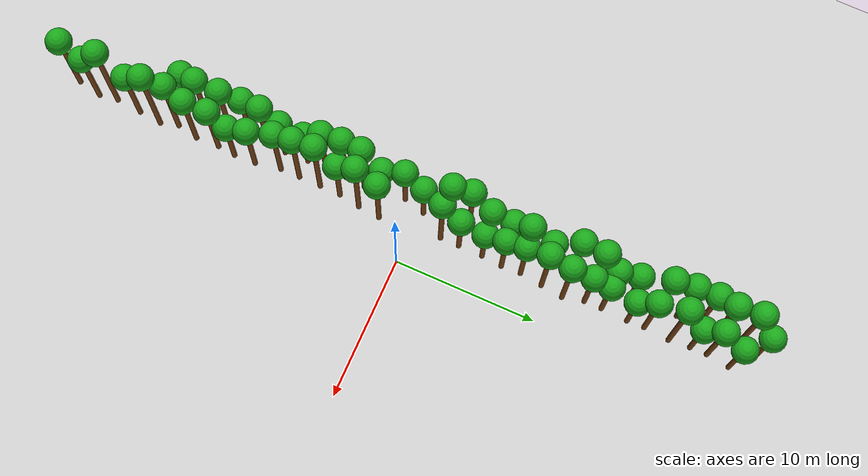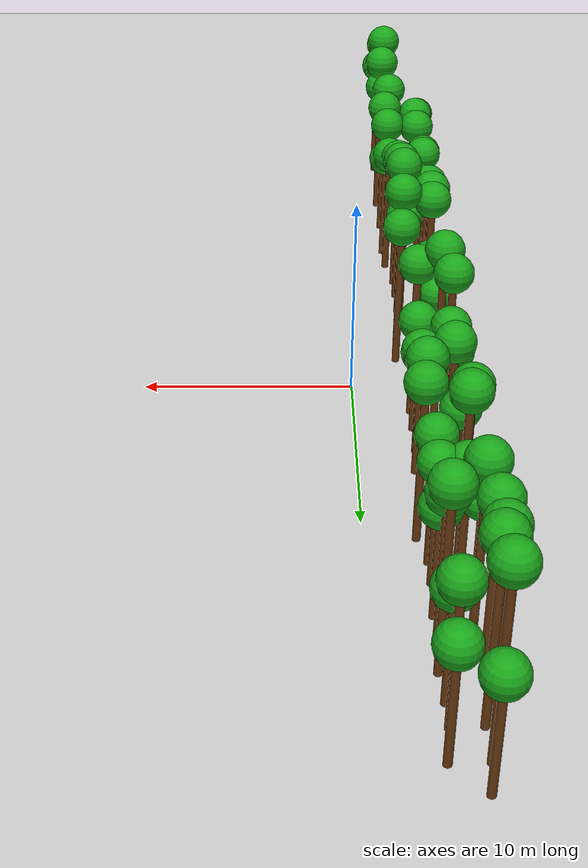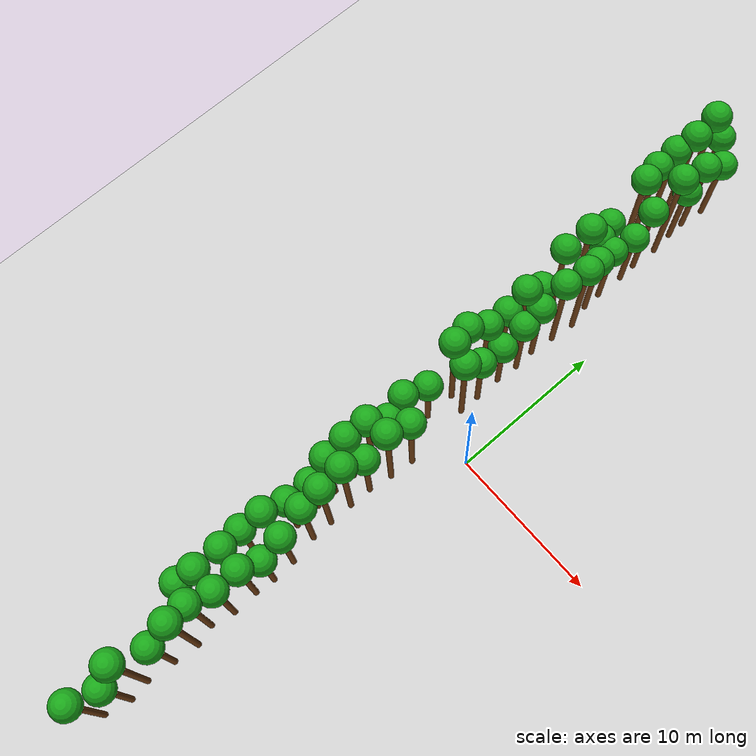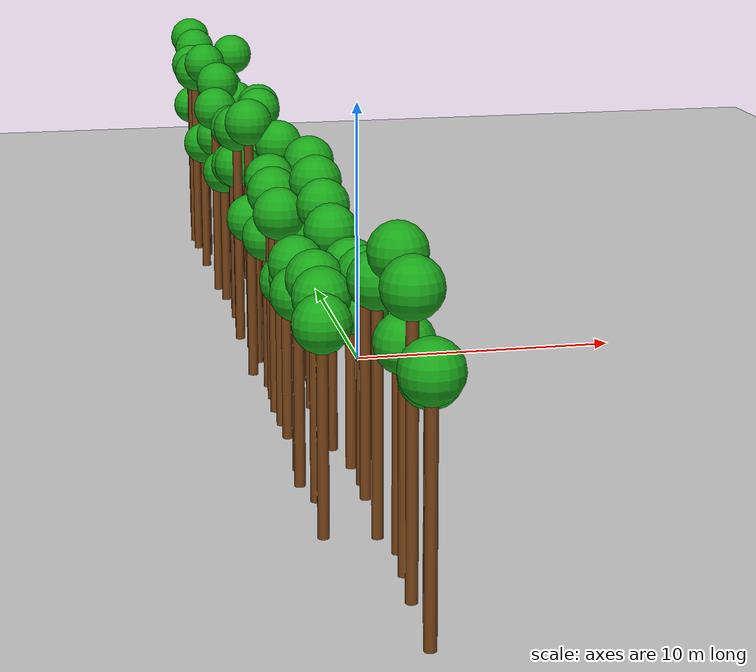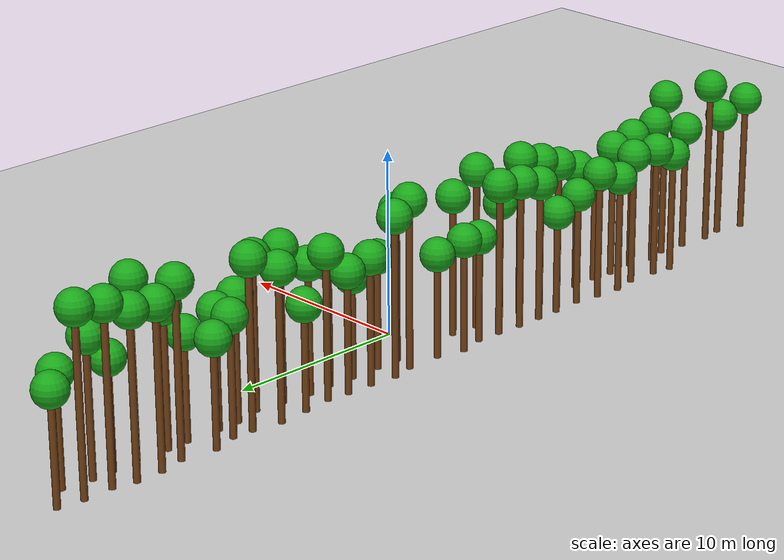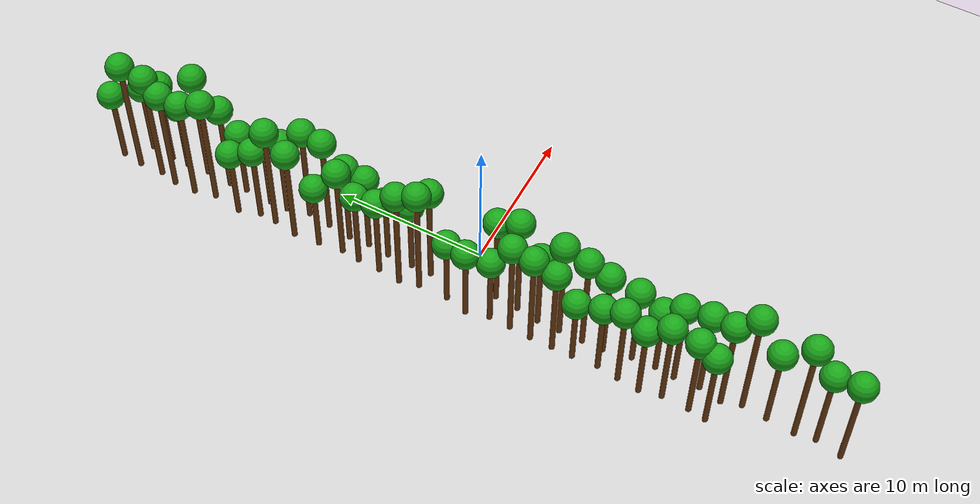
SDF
<sdf version="1.6">
 <world name="forest_world">
  <include><uri>model://sun</uri></include>
  <include><uri>model://ground_plane</uri></include>
  <model name="tree_481">
   <static>true</static>
   <link name="trunk">
    <collision name="collision">
     <pose>-4.20 -17.26 3.09 0 0 0</pose>
     <geometry><cylinder><radius>0.18</radius><length>6.18</length></cylinder></geometry>
    </collision>
    <visual name="trunk_visual">
     <pose>-4.20 -17.26 3.09 0 0 0</pose>
     <geometry><cylinder><radius>0.18</radius><length>6.18</length></cylinder></geometry>
     <material><ambient>0.35 0.20 0.05 1</ambient><diffuse>0.45 0.25 0.08 1</diffuse></material>
    </visual>
    <visual name="leaf_visual">
     <pose>-4.20 -17.26 6.63 0 0 0</pose>
     <geometry><sphere><radius>0.9</radius></sphere></geometry>
     <material><ambient>0.05 0.45 0.05 1</ambient><diffuse>0.10 0.65 0.10 1</diffuse></material>
    </visual>
   </link>
  </model>
  <model name="tree_482">
   <static>true</static>
   <link name="trunk">
    <collision name="collision">
     <pose>-4.02 -16.11 3.34 0 0 0</pose>
     <geometry><cylinder><radius>0.18</radius><length>6.68</length></cylinder></geometry>
    </collision>
    <visual name="trunk_visual">
     <pose>-4.02 -16.11 3.34 0 0 0</pose>
     <geometry><cylinder><radius>0.18</radius><length>6.68</length></cylinder></geometry>
     <material><ambient>0.35 0.20 0.05 1</ambient><diffuse>0.45 0.25 0.08 1</diffuse></material>
    </visual>
    <visual name="leaf_visual">
     <pose>-4.02 -16.11 7.13 0 0 0</pose>
     <geometry><sphere><radius>0.9</radius></sphere></geometry>
     <material><ambient>0.05 0.45 0.05 1</ambient><diffuse>0.10 0.65 0.10 1</diffuse></material>
    </visual>
   </link>
  </model>
  <model name="tree_483">
   <static>true</static>
   <link name="trunk">
    <collision name="collision">
     <pose>-3.95 -14.34 3.38 0 0 0</pose>
     <geometry><cylinder><radius>0.18</radius><length>6.75</length></cylinder></geometry>
    </collision>
    <visual name="trunk_visual">
     <pose>-3.95 -14.34 3.38 0 0 0</pose>
     <geometry><cylinder><radius>0.18</radius><length>6.75</length></cylinder></geometry>
     <material><ambient>0.35 0.20 0.05 1</ambient><diffuse>0.45 0.25 0.08 1</diffuse></material>
    </visual>
    <visual name="leaf_visual">
     <pose>-3.95 -14.34 7.20 0 0 0</pose>
     <geometry><sphere><radius>0.9</radius></sphere></geometry>
     <material><ambient>0.05 0.45 0.05 1</ambient><diffuse>0.10 0.65 0.10 1</diffuse></material>
    </visual>
   </link>
  </model>
  <model name="tree_484">
   <static>true</static>
   <link name="trunk">
    <collision name="collision">
     <pose>-4.24 -12.94 2.96 0 0 0</pose>
     <geometry><cylinder><radius>0.18</radius><length>5.91</length></cylinder></geometry>
    </collision>
    <visual name="trunk_visual">
     <pose>-4.24 -12.94 2.96 0 0 0</pose>
     <geometry><cylinder><radius>0.18</radius><length>5.91</length></cylinder></geometry>
     <material><ambient>0.35 0.20 0.05 1</ambient><diffuse>0.45 0.25 0.08 1</diffuse></material>
    </visual>
    <visual name="leaf_visual">
     <pose>-4.24 -12.94 6.36 0 0 0</pose>
     <geometry><sphere><radius>0.9</radius></sphere></geometry>
     <material><ambient>0.05 0.45 0.05 1</ambient><diffuse>0.10 0.65 0.10 1</diffuse></material>
    </visual>
   </link>
  </model>
  <model name="tree_485">
   <static>true</static>
   <link name="trunk">
    <collision name="collision">
     <pose>-4.08 -11.49 3.25 0 0 0</pose>
     <geometry><cylinder><radius>0.18</radius><length>6.50</length></cylinder></geometry>
    </collision>
    <visual name="trunk_visual">
     <pose>-4.08 -11.49 3.25 0 0 0</pose>
     <geometry><cylinder><radius>0.18</radius><length>6.50</length></cylinder></geometry>
     <material><ambient>0.35 0.20 0.05 1</ambient><diffuse>0.45 0.25 0.08 1</diffuse></material>
    </visual>
    <visual name="leaf_visual">
     <pose>-4.08 -11.49 6.95 0 0 0</pose>
     <geometry><sphere><radius>0.9</radius></sphere></geometry>
     <material><ambient>0.05 0.45 0.05 1</ambient><diffuse>0.10 0.65 0.10 1</diffuse></material>
    </visual>
   </link>
  </model>
  <model name="tree_486">
   <static>true</static>
   <link name="trunk">
    <collision name="collision">
     <pose>-3.87 -10.06 2.82 0 0 0</pose>
     <geometry><cylinder><radius>0.18</radius><length>5.63</length></cylinder></geometry>
    </collision>
    <visual name="trunk_visual">
     <pose>-3.87 -10.06 2.82 0 0 0</pose>
     <geometry><cylinder><radius>0.18</radius><length>5.63</length></cylinder></geometry>
     <material><ambient>0.35 0.20 0.05 1</ambient><diffuse>0.45 0.25 0.08 1</diffuse></material>
    </visual>
    <visual name="leaf_visual">
     <pose>-3.87 -10.06 6.08 0 0 0</pose>
     <geometry><sphere><radius>0.9</radius></sphere></geometry>
     <material><ambient>0.05 0.45 0.05 1</ambient><diffuse>0.10 0.65 0.10 1</diffuse></material>
    </visual>
   </link>
  </model>
  <model name="tree_487">
   <static>true</static>
   <link name="trunk">
    <collision name="collision">
     <pose>-3.96 -8.39 2.55 0 0 0</pose>
     <geometry><cylinder><radius>0.18</radius><length>5.10</length></cylinder></geometry>
    </collision>
    <visual name="trunk_visual">
     <pose>-3.96 -8.39 2.55 0 0 0</pose>
     <geometry><cylinder><radius>0.18</radius><length>5.10</length></cylinder></geometry>
     <material><ambient>0.35 0.20 0.05 1</ambient><diffuse>0.45 0.25 0.08 1</diffuse></material>
    </visual>
    <visual name="leaf_visual">
     <pose>-3.96 -8.39 5.55 0 0 0</pose>
     <geometry><sphere><radius>0.9</radius></sphere></geometry>
     <material><ambient>0.05 0.45 0.05 1</ambient><diffuse>0.10 0.65 0.10 1</diffuse></material>
    </visual>
   </link>
  </model>
  <model name="tree_488">
   <static>true</static>
   <link name="trunk">
    <collision name="collision">
     <pose>-3.97 -7.03 3.54 0 0 0</pose>
     <geometry><cylinder><radius>0.18</radius><length>7.08</length></cylinder></geometry>
    </collision>
    <visual name="trunk_visual">
     <pose>-3.97 -7.03 3.54 0 0 0</pose>
     <geometry><cylinder><radius>0.18</radius><length>7.08</length></cylinder></geometry>
     <material><ambient>0.35 0.20 0.05 1</ambient><diffuse>0.45 0.25 0.08 1</diffuse></material>
    </visual>
    <visual name="leaf_visual">
     <pose>-3.97 -7.03 7.53 0 0 0</pose>
     <geometry><sphere><radius>0.9</radius></sphere></geometry>
     <material><ambient>0.05 0.45 0.05 1</ambient><diffuse>0.10 0.65 0.10 1</diffuse></material>
    </visual>
   </link>
  </model>
  <model name="tree_489">
   <static>true</static>
   <link name="trunk">
    <collision name="collision">
     <pose>-3.98 -5.56 3.75 0 0 0</pose>
     <geometry><cylinder><radius>0.18</radius><length>7.50</length></cylinder></geometry>
    </collision>
    <visual name="trunk_visual">
     <pose>-3.98 -5.56 3.75 0 0 0</pose>
     <geometry><cylinder><radius>0.18</radius><length>7.50</length></cylinder></geometry>
     <material><ambient>0.35 0.20 0.05 1</ambient><diffuse>0.45 0.25 0.08 1</diffuse></material>
    </visual>
    <visual name="leaf_visual">
     <pose>-3.98 -5.56 7.95 0 0 0</pose>
     <geometry><sphere><radius>0.9</radius></sphere></geometry>
     <material><ambient>0.05 0.45 0.05 1</ambient><diffuse>0.10 0.65 0.10 1</diffuse></material>
    </visual>
   </link>
  </model>
  <model name="tree_490">
   <static>true</static>
   <link name="trunk">
    <collision name="collision">
     <pose>-3.88 -4.12 3.83 0 0 0</pose>
     <geometry><cylinder><radius>0.18</radius><length>7.66</length></cylinder></geometry>
    </collision>
    <visual name="trunk_visual">
     <pose>-3.88 -4.12 3.83 0 0 0</pose>
     <geometry><cylinder><radius>0.18</radius><length>7.66</length></cylinder></geometry>
     <material><ambient>0.35 0.20 0.05 1</ambient><diffuse>0.45 0.25 0.08 1</diffuse></material>
    </visual>
    <visual name="leaf_visual">
     <pose>-3.88 -4.12 8.11 0 0 0</pose>
     <geometry><sphere><radius>0.9</radius></sphere></geometry>
     <material><ambient>0.05 0.45 0.05 1</ambient><diffuse>0.10 0.65 0.10 1</diffuse></material>
    </visual>
   </link>
  </model>
  <model name="tree_491">
   <static>true</static>
   <link name="trunk">
    <collision name="collision">
     <pose>-3.83 -2.70 2.62 0 0 0</pose>
     <geometry><cylinder><radius>0.18</radius><length>5.24</length></cylinder></geometry>
    </collision>
    <visual name="trunk_visual">
     <pose>-3.83 -2.70 2.62 0 0 0</pose>
     <geometry><cylinder><radius>0.18</radius><length>5.24</length></cylinder></geometry>
     <material><ambient>0.35 0.20 0.05 1</ambient><diffuse>0.45 0.25 0.08 1</diffuse></material>
    </visual>
    <visual name="leaf_visual">
     <pose>-3.83 -2.70 5.69 0 0 0</pose>
     <geometry><sphere><radius>0.9</radius></sphere></geometry>
     <material><ambient>0.05 0.45 0.05 1</ambient><diffuse>0.10 0.65 0.10 1</diffuse></material>
    </visual>
   </link>
  </model>
  <model name="tree_492">
   <static>true</static>
   <link name="trunk">
    <collision name="collision">
     <pose>-4.21 -1.22 2.79 0 0 0</pose>
     <geometry><cylinder><radius>0.18</radius><length>5.57</length></cylinder></geometry>
    </collision>
    <visual name="trunk_visual">
     <pose>-4.21 -1.22 2.79 0 0 0</pose>
     <geometry><cylinder><radius>0.18</radius><length>5.57</length></cylinder></geometry>
     <material><ambient>0.35 0.20 0.05 1</ambient><diffuse>0.45 0.25 0.08 1</diffuse></material>
    </visual>
    <visual name="leaf_visual">
     <pose>-4.21 -1.22 6.02 0 0 0</pose>
     <geometry><sphere><radius>0.9</radius></sphere></geometry>
     <material><ambient>0.05 0.45 0.05 1</ambient><diffuse>0.10 0.65 0.10 1</diffuse></material>
    </visual>
   </link>
  </model>
  <model name="tree_493">
   <static>true</static>
   <link name="trunk">
    <collision name="collision">
     <pose>-3.82 0.29 2.56 0 0 0</pose>
     <geometry><cylinder><radius>0.18</radius><length>5.12</length></cylinder></geometry>
    </collision>
    <visual name="trunk_visual">
     <pose>-3.82 0.29 2.56 0 0 0</pose>
     <geometry><cylinder><radius>0.18</radius><length>5.12</length></cylinder></geometry>
     <material><ambient>0.35 0.20 0.05 1</ambient><diffuse>0.45 0.25 0.08 1</diffuse></material>
    </visual>
    <visual name="leaf_visual">
     <pose>-3.82 0.29 5.57 0 0 0</pose>
     <geometry><sphere><radius>0.9</radius></sphere></geometry>
     <material><ambient>0.05 0.45 0.05 1</ambient><diffuse>0.10 0.65 0.10 1</diffuse></material>
    </visual>
   </link>
  </model>
  <model name="tree_494">
   <static>true</static>
   <link name="trunk">
    <collision name="collision">
     <pose>-3.82 2.25 4.27 0 0 0</pose>
     <geometry><cylinder><radius>0.18</radius><length>8.53</length></cylinder></geometry>
    </collision>
    <visual name="trunk_visual">
     <pose>-3.82 2.25 4.27 0 0 0</pose>
     <geometry><cylinder><radius>0.18</radius><length>8.53</length></cylinder></geometry>
     <material><ambient>0.35 0.20 0.05 1</ambient><diffuse>0.45 0.25 0.08 1</diffuse></material>
    </visual>
    <visual name="leaf_visual">
     <pose>-3.82 2.25 8.98 0 0 0</pose>
     <geometry><sphere><radius>0.9</radius></sphere></geometry>
     <material><ambient>0.05 0.45 0.05 1</ambient><diffuse>0.10 0.65 0.10 1</diffuse></material>
    </visual>
   </link>
  </model>
  <model name="tree_495">
   <static>true</static>
   <link name="trunk">
    <collision name="collision">
     <pose>-4.11 3.52 4.04 0 0 0</pose>
     <geometry><cylinder><radius>0.18</radius><length>8.08</length></cylinder></geometry>
    </collision>
    <visual name="trunk_visual">
     <pose>-4.11 3.52 4.04 0 0 0</pose>
     <geometry><cylinder><radius>0.18</radius><length>8.08</length></cylinder></geometry>
     <material><ambient>0.35 0.20 0.05 1</ambient><diffuse>0.45 0.25 0.08 1</diffuse></material>
    </visual>
    <visual name="leaf_visual">
     <pose>-4.11 3.52 8.53 0 0 0</pose>
     <geometry><sphere><radius>0.9</radius></sphere></geometry>
     <material><ambient>0.05 0.45 0.05 1</ambient><diffuse>0.10 0.65 0.10 1</diffuse></material>
    </visual>
   </link>
  </model>
  <model name="tree_496">
   <static>true</static>
   <link name="trunk">
    <collision name="collision">
     <pose>-3.95 5.03 3.15 0 0 0</pose>
     <geometry><cylinder><radius>0.18</radius><length>6.31</length></cylinder></geometry>
    </collision>
    <visual name="trunk_visual">
     <pose>-3.95 5.03 3.15 0 0 0</pose>
     <geometry><cylinder><radius>0.18</radius><length>6.31</length></cylinder></geometry>
     <material><ambient>0.35 0.20 0.05 1</ambient><diffuse>0.45 0.25 0.08 1</diffuse></material>
    </visual>
    <visual name="leaf_visual">
     <pose>-3.95 5.03 6.76 0 0 0</pose>
     <geometry><sphere><radius>0.9</radius></sphere></geometry>
     <material><ambient>0.05 0.45 0.05 1</ambient><diffuse>0.10 0.65 0.10 1</diffuse></material>
    </visual>
   </link>
  </model>
  <model name="tree_497">
   <static>true</static>
   <link name="trunk">
    <collision name="collision">
     <pose>-3.92 6.53 3.01 0 0 0</pose>
     <geometry><cylinder><radius>0.18</radius><length>6.01</length></cylinder></geometry>
    </collision>
    <visual name="trunk_visual">
     <pose>-3.92 6.53 3.01 0 0 0</pose>
     <geometry><cylinder><radius>0.18</radius><length>6.01</length></cylinder></geometry>
     <material><ambient>0.35 0.20 0.05 1</ambient><diffuse>0.45 0.25 0.08 1</diffuse></material>
    </visual>
    <visual name="leaf_visual">
     <pose>-3.92 6.53 6.46 0 0 0</pose>
     <geometry><sphere><radius>0.9</radius></sphere></geometry>
     <material><ambient>0.05 0.45 0.05 1</ambient><diffuse>0.10 0.65 0.10 1</diffuse></material>
    </visual>
   </link>
  </model>
  <model name="tree_498">
   <static>true</static>
   <link name="trunk">
    <collision name="collision">
     <pose>-3.79 7.78 3.67 0 0 0</pose>
     <geometry><cylinder><radius>0.18</radius><length>7.33</length></cylinder></geometry>
    </collision>
    <visual name="trunk_visual">
     <pose>-3.79 7.78 3.67 0 0 0</pose>
     <geometry><cylinder><radius>0.18</radius><length>7.33</length></cylinder></geometry>
     <material><ambient>0.35 0.20 0.05 1</ambient><diffuse>0.45 0.25 0.08 1</diffuse></material>
    </visual>
    <visual name="leaf_visual">
     <pose>-3.79 7.78 7.78 0 0 0</pose>
     <geometry><sphere><radius>0.9</radius></sphere></geometry>
     <material><ambient>0.05 0.45 0.05 1</ambient><diffuse>0.10 0.65 0.10 1</diffuse></material>
    </visual>
   </link>
  </model>
  <model name="tree_499">
   <static>true</static>
   <link name="trunk">
    <collision name="collision">
     <pose>-3.98 9.40 2.56 0 0 0</pose>
     <geometry><cylinder><radius>0.18</radius><length>5.13</length></cylinder></geometry>
    </collision>
    <visual name="trunk_visual">
     <pose>-3.98 9.40 2.56 0 0 0</pose>
     <geometry><cylinder><radius>0.18</radius><length>5.13</length></cylinder></geometry>
     <material><ambient>0.35 0.20 0.05 1</ambient><diffuse>0.45 0.25 0.08 1</diffuse></material>
    </visual>
    <visual name="leaf_visual">
     <pose>-3.98 9.40 5.58 0 0 0</pose>
     <geometry><sphere><radius>0.9</radius></sphere></geometry>
     <material><ambient>0.05 0.45 0.05 1</ambient><diffuse>0.10 0.65 0.10 1</diffuse></material>
    </visual>
   </link>
  </model>
  <model name="tree_500">
   <static>true</static>
   <link name="trunk">
    <collision name="collision">
     <pose>-4.13 11.11 3.76 0 0 0</pose>
     <geometry><cylinder><radius>0.18</radius><length>7.52</length></cylinder></geometry>
    </collision>
    <visual name="trunk_visual">
     <pose>-4.13 11.11 3.76 0 0 0</pose>
     <geometry><cylinder><radius>0.18</radius><length>7.52</length></cylinder></geometry>
     <material><ambient>0.35 0.20 0.05 1</ambient><diffuse>0.45 0.25 0.08 1</diffuse></material>
    </visual>
    <visual name="leaf_visual">
     <pose>-4.13 11.11 7.97 0 0 0</pose>
     <geometry><sphere><radius>0.9</radius></sphere></geometry>
     <material><ambient>0.05 0.45 0.05 1</ambient><diffuse>0.10 0.65 0.10 1</diffuse></material>
    </visual>
   </link>
  </model>
  <model name="tree_501">
   <static>true</static>
   <link name="trunk">
    <collision name="collision">
     <pose>-3.84 12.70 4.18 0 0 0</pose>
     <geometry><cylinder><radius>0.18</radius><length>8.35</length></cylinder></geometry>
    </collision>
    <visual name="trunk_visual">
     <pose>-3.84 12.70 4.18 0 0 0</pose>
     <geometry><cylinder><radius>0.18</radius><length>8.35</length></cylinder></geometry>
     <material><ambient>0.35 0.20 0.05 1</ambient><diffuse>0.45 0.25 0.08 1</diffuse></material>
    </visual>
    <visual name="leaf_visual">
     <pose>-3.84 12.70 8.80 0 0 0</pose>
     <geometry><sphere><radius>0.9</radius></sphere></geometry>
     <material><ambient>0.05 0.45 0.05 1</ambient><diffuse>0.10 0.65 0.10 1</diffuse></material>
    </visual>
   </link>
  </model>
  <model name="tree_502">
   <static>true</static>
   <link name="trunk">
    <collision name="collision">
     <pose>-3.78 13.86 2.90 0 0 0</pose>
     <geometry><cylinder><radius>0.18</radius><length>5.80</length></cylinder></geometry>
    </collision>
    <visual name="trunk_visual">
     <pose>-3.78 13.86 2.90 0 0 0</pose>
     <geometry><cylinder><radius>0.18</radius><length>5.80</length></cylinder></geometry>
     <material><ambient>0.35 0.20 0.05 1</ambient><diffuse>0.45 0.25 0.08 1</diffuse></material>
    </visual>
    <visual name="leaf_visual">
     <pose>-3.78 13.86 6.25 0 0 0</pose>
     <geometry><sphere><radius>0.9</radius></sphere></geometry>
     <material><ambient>0.05 0.45 0.05 1</ambient><diffuse>0.10 0.65 0.10 1</diffuse></material>
    </visual>
   </link>
  </model>
  <model name="tree_503">
   <static>true</static>
   <link name="trunk">
    <collision name="collision">
     <pose>-4.21 15.26 2.61 0 0 0</pose>
     <geometry><cylinder><radius>0.18</radius><length>5.23</length></cylinder></geometry>
    </collision>
    <visual name="trunk_visual">
     <pose>-4.21 15.26 2.61 0 0 0</pose>
     <geometry><cylinder><radius>0.18</radius><length>5.23</length></cylinder></geometry>
     <material><ambient>0.35 0.20 0.05 1</ambient><diffuse>0.45 0.25 0.08 1</diffuse></material>
    </visual>
    <visual name="leaf_visual">
     <pose>-4.21 15.26 5.68 0 0 0</pose>
     <geometry><sphere><radius>0.9</radius></sphere></geometry>
     <material><ambient>0.05 0.45 0.05 1</ambient><diffuse>0.10 0.65 0.10 1</diffuse></material>
    </visual>
   </link>
  </model>
  <model name="tree_504">
   <static>true</static>
   <link name="trunk">
    <collision name="collision">
     <pose>-3.93 17.17 4.27 0 0 0</pose>
     <geometry><cylinder><radius>0.18</radius><length>8.54</length></cylinder></geometry>
    </collision>
    <visual name="trunk_visual">
     <pose>-3.93 17.17 4.27 0 0 0</pose>
     <geometry><cylinder><radius>0.18</radius><length>8.54</length></cylinder></geometry>
     <material><ambient>0.35 0.20 0.05 1</ambient><diffuse>0.45 0.25 0.08 1</diffuse></material>
    </visual>
    <visual name="leaf_visual">
     <pose>-3.93 17.17 8.99 0 0 0</pose>
     <geometry><sphere><radius>0.9</radius></sphere></geometry>
     <material><ambient>0.05 0.45 0.05 1</ambient><diffuse>0.10 0.65 0.10 1</diffuse></material>
    </visual>
   </link>
  </model>
  <model name="tree_505">
   <static>true</static>
   <link name="trunk">
    <collision name="collision">
     <pose>-4.24 18.58 3.99 0 0 0</pose>
     <geometry><cylinder><radius>0.18</radius><length>7.98</length></cylinder></geometry>
    </collision>
    <visual name="trunk_visual">
     <pose>-4.24 18.58 3.99 0 0 0</pose>
     <geometry><cylinder><radius>0.18</radius><length>7.98</length></cylinder></geometry>
     <material><ambient>0.35 0.20 0.05 1</ambient><diffuse>0.45 0.25 0.08 1</diffuse></material>
    </visual>
    <visual name="leaf_visual">
     <pose>-4.24 18.58 8.43 0 0 0</pose>
     <geometry><sphere><radius>0.9</radius></sphere></geometry>
     <material><ambient>0.05 0.45 0.05 1</ambient><diffuse>0.10 0.65 0.10 1</diffuse></material>
    </visual>
   </link>
  </model>
  <model name="tree_506">
   <static>true</static>
   <link name="trunk">
    <collision name="collision">
     <pose>-4.25 20.07 4.04 0 0 0</pose>
     <geometry><cylinder><radius>0.18</radius><length>8.07</length></cylinder></geometry>
    </collision>
    <visual name="trunk_visual">
     <pose>-4.25 20.07 4.04 0 0 0</pose>
     <geometry><cylinder><radius>0.18</radius><length>8.07</length></cylinder></geometry>
     <material><ambient>0.35 0.20 0.05 1</ambient><diffuse>0.45 0.25 0.08 1</diffuse></material>
    </visual>
    <visual name="leaf_visual">
     <pose>-4.25 20.07 8.52 0 0 0</pose>
     <geometry><sphere><radius>0.9</radius></sphere></geometry>
     <material><ambient>0.05 0.45 0.05 1</ambient><diffuse>0.10 0.65 0.10 1</diffuse></material>
    </visual>
   </link>
  </model>
  <model name="tree_507">
   <static>true</static>
   <link name="trunk">
    <collision name="collision">
     <pose>-3.97 21.28 4.33 0 0 0</pose>
     <geometry><cylinder><radius>0.18</radius><length>8.66</length></cylinder></geometry>
    </collision>
    <visual name="trunk_visual">
     <pose>-3.97 21.28 4.33 0 0 0</pose>
     <geometry><cylinder><radius>0.18</radius><length>8.66</length></cylinder></geometry>
     <material><ambient>0.35 0.20 0.05 1</ambient><diffuse>0.45 0.25 0.08 1</diffuse></material>
    </visual>
    <visual name="leaf_visual">
     <pose>-3.97 21.28 9.11 0 0 0</pose>
     <geometry><sphere><radius>0.9</radius></sphere></geometry>
     <material><ambient>0.05 0.45 0.05 1</ambient><diffuse>0.10 0.65 0.10 1</diffuse></material>
    </visual>
   </link>
  </model>
  <model name="tree_508">
   <static>true</static>
   <link name="trunk">
    <collision name="collision">
     <pose>-4.01 22.91 4.48 0 0 0</pose>
     <geometry><cylinder><radius>0.18</radius><length>8.96</length></cylinder></geometry>
    </collision>
    <visual name="trunk_visual">
     <pose>-4.01 22.91 4.48 0 0 0</pose>
     <geometry><cylinder><radius>0.18</radius><length>8.96</length></cylinder></geometry>
     <material><ambient>0.35 0.20 0.05 1</ambient><diffuse>0.45 0.25 0.08 1</diffuse></material>
    </visual>
    <visual name="leaf_visual">
     <pose>-4.01 22.91 9.41 0 0 0</pose>
     <geometry><sphere><radius>0.9</radius></sphere></geometry>
     <material><ambient>0.05 0.45 0.05 1</ambient><diffuse>0.10 0.65 0.10 1</diffuse></material>
    </visual>
   </link>
  </model>
  <model name="tree_509">
   <static>true</static>
   <link name="trunk">
    <collision name="collision">
     <pose>-3.83 24.31 2.70 0 0 0</pose>
     <geometry><cylinder><radius>0.18</radius><length>5.40</length></cylinder></geometry>
    </collision>
    <visual name="trunk_visual">
     <pose>-3.83 24.31 2.70 0 0 0</pose>
     <geometry><cylinder><radius>0.18</radius><length>5.40</length></cylinder></geometry>
     <material><ambient>0.35 0.20 0.05 1</ambient><diffuse>0.45 0.25 0.08 1</diffuse></material>
    </visual>
    <visual name="leaf_visual">
     <pose>-3.83 24.31 5.85 0 0 0</pose>
     <geometry><sphere><radius>0.9</radius></sphere></geometry>
     <material><ambient>0.05 0.45 0.05 1</ambient><diffuse>0.10 0.65 0.10 1</diffuse></material>
    </visual>
   </link>
  </model>
  <model name="tree_510">
   <static>true</static>
   <link name="trunk">
    <collision name="collision">
     <pose>-2.71 -25.18 3.57 0 0 0</pose>
     <geometry><cylinder><radius>0.18</radius><length>7.15</length></cylinder></geometry>
    </collision>
    <visual name="trunk_visual">
     <pose>-2.71 -25.18 3.57 0 0 0</pose>
     <geometry><cylinder><radius>0.18</radius><length>7.15</length></cylinder></geometry>
     <material><ambient>0.35 0.20 0.05 1</ambient><diffuse>0.45 0.25 0.08 1</diffuse></material>
    </visual>
    <visual name="leaf_visual">
     <pose>-2.71 -25.18 7.60 0 0 0</pose>
     <geometry><sphere><radius>0.9</radius></sphere></geometry>
     <material><ambient>0.05 0.45 0.05 1</ambient><diffuse>0.10 0.65 0.10 1</diffuse></material>
    </visual>
   </link>
  </model>
  <model name="tree_511">
   <static>true</static>
   <link name="trunk">
    <collision name="collision">
     <pose>-2.37 -23.52 3.24 0 0 0</pose>
     <geometry><cylinder><radius>0.18</radius><length>6.48</length></cylinder></geometry>
    </collision>
    <visual name="trunk_visual">
     <pose>-2.37 -23.52 3.24 0 0 0</pose>
     <geometry><cylinder><radius>0.18</radius><length>6.48</length></cylinder></geometry>
     <material><ambient>0.35 0.20 0.05 1</ambient><diffuse>0.45 0.25 0.08 1</diffuse></material>
    </visual>
    <visual name="leaf_visual">
     <pose>-2.37 -23.52 6.93 0 0 0</pose>
     <geometry><sphere><radius>0.9</radius></sphere></geometry>
     <material><ambient>0.05 0.45 0.05 1</ambient><diffuse>0.10 0.65 0.10 1</diffuse></material>
    </visual>
   </link>
  </model>
  <model name="tree_512">
   <static>true</static>
   <link name="trunk">
    <collision name="collision">
     <pose>-2.58 -22.22 4.26 0 0 0</pose>
     <geometry><cylinder><radius>0.18</radius><length>8.52</length></cylinder></geometry>
    </collision>
    <visual name="trunk_visual">
     <pose>-2.58 -22.22 4.26 0 0 0</pose>
     <geometry><cylinder><radius>0.18</radius><length>8.52</length></cylinder></geometry>
     <material><ambient>0.35 0.20 0.05 1</ambient><diffuse>0.45 0.25 0.08 1</diffuse></material>
    </visual>
    <visual name="leaf_visual">
     <pose>-2.58 -22.22 8.97 0 0 0</pose>
     <geometry><sphere><radius>0.9</radius></sphere></geometry>
     <material><ambient>0.05 0.45 0.05 1</ambient><diffuse>0.10 0.65 0.10 1</diffuse></material>
    </visual>
   </link>
  </model>
  <model name="tree_513">
   <static>true</static>
   <link name="trunk">
    <collision name="collision">
     <pose>-2.42 -20.41 3.23 0 0 0</pose>
     <geometry><cylinder><radius>0.18</radius><length>6.45</length></cylinder></geometry>
    </collision>
    <visual name="trunk_visual">
     <pose>-2.42 -20.41 3.23 0 0 0</pose>
     <geometry><cylinder><radius>0.18</radius><length>6.45</length></cylinder></geometry>
     <material><ambient>0.35 0.20 0.05 1</ambient><diffuse>0.45 0.25 0.08 1</diffuse></material>
    </visual>
    <visual name="leaf_visual">
     <pose>-2.42 -20.41 6.90 0 0 0</pose>
     <geometry><sphere><radius>0.9</radius></sphere></geometry>
     <material><ambient>0.05 0.45 0.05 1</ambient><diffuse>0.10 0.65 0.10 1</diffuse></material>
    </visual>
   </link>
  </model>
  <model name="tree_514">
   <static>true</static>
   <link name="trunk">
    <collision name="collision">
     <pose>-2.27 -18.80 4.31 0 0 0</pose>
     <geometry><cylinder><radius>0.18</radius><length>8.62</length></cylinder></geometry>
    </collision>
    <visual name="trunk_visual">
     <pose>-2.27 -18.80 4.31 0 0 0</pose>
     <geometry><cylinder><radius>0.18</radius><length>8.62</length></cylinder></geometry>
     <material><ambient>0.35 0.20 0.05 1</ambient><diffuse>0.45 0.25 0.08 1</diffuse></material>
    </visual>
    <visual name="leaf_visual">
     <pose>-2.27 -18.80 9.07 0 0 0</pose>
     <geometry><sphere><radius>0.9</radius></sphere></geometry>
     <material><ambient>0.05 0.45 0.05 1</ambient><diffuse>0.10 0.65 0.10 1</diffuse></material>
    </visual>
   </link>
  </model>
  <model name="tree_515">
   <static>true</static>
   <link name="trunk">
    <collision name="collision">
     <pose>-2.63 -17.56 3.75 0 0 0</pose>
     <geometry><cylinder><radius>0.18</radius><length>7.50</length></cylinder></geometry>
    </collision>
    <visual name="trunk_visual">
     <pose>-2.63 -17.56 3.75 0 0 0</pose>
     <geometry><cylinder><radius>0.18</radius><length>7.50</length></cylinder></geometry>
     <material><ambient>0.35 0.20 0.05 1</ambient><diffuse>0.45 0.25 0.08 1</diffuse></material>
    </visual>
    <visual name="leaf_visual">
     <pose>-2.63 -17.56 7.95 0 0 0</pose>
     <geometry><sphere><radius>0.9</radius></sphere></geometry>
     <material><ambient>0.05 0.45 0.05 1</ambient><diffuse>0.10 0.65 0.10 1</diffuse></material>
    </visual>
   </link>
  </model>
  <model name="tree_516">
   <static>true</static>
   <link name="trunk">
    <collision name="collision">
     <pose>-2.33 -16.07 3.54 0 0 0</pose>
     <geometry><cylinder><radius>0.18</radius><length>7.08</length></cylinder></geometry>
    </collision>
    <visual name="trunk_visual">
     <pose>-2.33 -16.07 3.54 0 0 0</pose>
     <geometry><cylinder><radius>0.18</radius><length>7.08</length></cylinder></geometry>
     <material><ambient>0.35 0.20 0.05 1</ambient><diffuse>0.45 0.25 0.08 1</diffuse></material>
    </visual>
    <visual name="leaf_visual">
     <pose>-2.33 -16.07 7.53 0 0 0</pose>
     <geometry><sphere><radius>0.9</radius></sphere></geometry>
     <material><ambient>0.05 0.45 0.05 1</ambient><diffuse>0.10 0.65 0.10 1</diffuse></material>
    </visual>
   </link>
  </model>
  <model name="tree_517">
   <static>true</static>
   <link name="trunk">
    <collision name="collision">
     <pose>-2.40 -14.42 3.41 0 0 0</pose>
     <geometry><cylinder><radius>0.18</radius><length>6.81</length></cylinder></geometry>
    </collision>
    <visual name="trunk_visual">
     <pose>-2.40 -14.42 3.41 0 0 0</pose>
     <geometry><cylinder><radius>0.18</radius><length>6.81</length></cylinder></geometry>
     <material><ambient>0.35 0.20 0.05 1</ambient><diffuse>0.45 0.25 0.08 1</diffuse></material>
    </visual>
    <visual name="leaf_visual">
     <pose>-2.40 -14.42 7.26 0 0 0</pose>
     <geometry><sphere><radius>0.9</radius></sphere></geometry>
     <material><ambient>0.05 0.45 0.05 1</ambient><diffuse>0.10 0.65 0.10 1</diffuse></material>
    </visual>
   </link>
  </model>
  <model name="tree_518">
   <static>true</static>
   <link name="trunk">
    <collision name="collision">
     <pose>-2.28 -13.15 2.71 0 0 0</pose>
     <geometry><cylinder><radius>0.18</radius><length>5.42</length></cylinder></geometry>
    </collision>
    <visual name="trunk_visual">
     <pose>-2.28 -13.15 2.71 0 0 0</pose>
     <geometry><cylinder><radius>0.18</radius><length>5.42</length></cylinder></geometry>
     <material><ambient>0.35 0.20 0.05 1</ambient><diffuse>0.45 0.25 0.08 1</diffuse></material>
    </visual>
    <visual name="leaf_visual">
     <pose>-2.28 -13.15 5.87 0 0 0</pose>
     <geometry><sphere><radius>0.9</radius></sphere></geometry>
     <material><ambient>0.05 0.45 0.05 1</ambient><diffuse>0.10 0.65 0.10 1</diffuse></material>
    </visual>
   </link>
  </model>
  <model name="tree_519">
   <static>true</static>
   <link name="trunk">
    <collision name="collision">
     <pose>-2.35 -11.62 3.19 0 0 0</pose>
     <geometry><cylinder><radius>0.18</radius><length>6.38</length></cylinder></geometry>
    </collision>
    <visual name="trunk_visual">
     <pose>-2.35 -11.62 3.19 0 0 0</pose>
     <geometry><cylinder><radius>0.18</radius><length>6.38</length></cylinder></geometry>
     <material><ambient>0.35 0.20 0.05 1</ambient><diffuse>0.45 0.25 0.08 1</diffuse></material>
    </visual>
    <visual name="leaf_visual">
     <pose>-2.35 -11.62 6.83 0 0 0</pose>
     <geometry><sphere><radius>0.9</radius></sphere></geometry>
     <material><ambient>0.05 0.45 0.05 1</ambient><diffuse>0.10 0.65 0.10 1</diffuse></material>
    </visual>
   </link>
  </model>
  <model name="tree_520">
   <static>true</static>
   <link name="trunk">
    <collision name="collision">
     <pose>-2.67 -9.82 3.55 0 0 0</pose>
     <geometry><cylinder><radius>0.18</radius><length>7.10</length></cylinder></geometry>
    </collision>
    <visual name="trunk_visual">
     <pose>-2.67 -9.82 3.55 0 0 0</pose>
     <geometry><cylinder><radius>0.18</radius><length>7.10</length></cylinder></geometry>
     <material><ambient>0.35 0.20 0.05 1</ambient><diffuse>0.45 0.25 0.08 1</diffuse></material>
    </visual>
    <visual name="leaf_visual">
     <pose>-2.67 -9.82 7.55 0 0 0</pose>
     <geometry><sphere><radius>0.9</radius></sphere></geometry>
     <material><ambient>0.05 0.45 0.05 1</ambient><diffuse>0.10 0.65 0.10 1</diffuse></material>
    </visual>
   </link>
  </model>
  <model name="tree_521">
   <static>true</static>
   <link name="trunk">
    <collision name="collision">
     <pose>-2.69 -8.44 3.82 0 0 0</pose>
     <geometry><cylinder><radius>0.18</radius><length>7.64</length></cylinder></geometry>
    </collision>
    <visual name="trunk_visual">
     <pose>-2.69 -8.44 3.82 0 0 0</pose>
     <geometry><cylinder><radius>0.18</radius><length>7.64</length></cylinder></geometry>
     <material><ambient>0.35 0.20 0.05 1</ambient><diffuse>0.45 0.25 0.08 1</diffuse></material>
    </visual>
    <visual name="leaf_visual">
     <pose>-2.69 -8.44 8.09 0 0 0</pose>
     <geometry><sphere><radius>0.9</radius></sphere></geometry>
     <material><ambient>0.05 0.45 0.05 1</ambient><diffuse>0.10 0.65 0.10 1</diffuse></material>
    </visual>
   </link>
  </model>
  <model name="tree_522">
   <static>true</static>
   <link name="trunk">
    <collision name="collision">
     <pose>-2.69 -6.88 4.06 0 0 0</pose>
     <geometry><cylinder><radius>0.18</radius><length>8.12</length></cylinder></geometry>
    </collision>
    <visual name="trunk_visual">
     <pose>-2.69 -6.88 4.06 0 0 0</pose>
     <geometry><cylinder><radius>0.18</radius><length>8.12</length></cylinder></geometry>
     <material><ambient>0.35 0.20 0.05 1</ambient><diffuse>0.45 0.25 0.08 1</diffuse></material>
    </visual>
    <visual name="leaf_visual">
     <pose>-2.69 -6.88 8.57 0 0 0</pose>
     <geometry><sphere><radius>0.9</radius></sphere></geometry>
     <material><ambient>0.05 0.45 0.05 1</ambient><diffuse>0.10 0.65 0.10 1</diffuse></material>
    </visual>
   </link>
  </model>
  <model name="tree_523">
   <static>true</static>
   <link name="trunk">
    <collision name="collision">
     <pose>-2.68 -5.40 3.04 0 0 0</pose>
     <geometry><cylinder><radius>0.18</radius><length>6.09</length></cylinder></geometry>
    </collision>
    <visual name="trunk_visual">
     <pose>-2.68 -5.40 3.04 0 0 0</pose>
     <geometry><cylinder><radius>0.18</radius><length>6.09</length></cylinder></geometry>
     <material><ambient>0.35 0.20 0.05 1</ambient><diffuse>0.45 0.25 0.08 1</diffuse></material>
    </visual>
    <visual name="leaf_visual">
     <pose>-2.68 -5.40 6.54 0 0 0</pose>
     <geometry><sphere><radius>0.9</radius></sphere></geometry>
     <material><ambient>0.05 0.45 0.05 1</ambient><diffuse>0.10 0.65 0.10 1</diffuse></material>
    </visual>
   </link>
  </model>
  <model name="tree_524">
   <static>true</static>
   <link name="trunk">
    <collision name="collision">
     <pose>-2.45 -3.89 4.10 0 0 0</pose>
     <geometry><cylinder><radius>0.18</radius><length>8.20</length></cylinder></geometry>
    </collision>
    <visual name="trunk_visual">
     <pose>-2.45 -3.89 4.10 0 0 0</pose>
     <geometry><cylinder><radius>0.18</radius><length>8.20</length></cylinder></geometry>
     <material><ambient>0.35 0.20 0.05 1</ambient><diffuse>0.45 0.25 0.08 1</diffuse></material>
    </visual>
    <visual name="leaf_visual">
     <pose>-2.45 -3.89 8.65 0 0 0</pose>
     <geometry><sphere><radius>0.9</radius></sphere></geometry>
     <material><ambient>0.05 0.45 0.05 1</ambient><diffuse>0.10 0.65 0.10 1</diffuse></material>
    </visual>
   </link>
  </model>
  <model name="tree_525">
   <static>true</static>
   <link name="trunk">
    <collision name="collision">
     <pose>-2.31 -2.33 3.57 0 0 0</pose>
     <geometry><cylinder><radius>0.18</radius><length>7.14</length></cylinder></geometry>
    </collision>
    <visual name="trunk_visual">
     <pose>-2.31 -2.33 3.57 0 0 0</pose>
     <geometry><cylinder><radius>0.18</radius><length>7.14</length></cylinder></geometry>
     <material><ambient>0.35 0.20 0.05 1</ambient><diffuse>0.45 0.25 0.08 1</diffuse></material>
    </visual>
    <visual name="leaf_visual">
     <pose>-2.31 -2.33 7.59 0 0 0</pose>
     <geometry><sphere><radius>0.9</radius></sphere></geometry>
     <material><ambient>0.05 0.45 0.05 1</ambient><diffuse>0.10 0.65 0.10 1</diffuse></material>
    </visual>
   </link>
  </model>
  <model name="tree_526">
   <static>true</static>
   <link name="trunk">
    <collision name="collision">
     <pose>-2.70 2.05 3.85 0 0 0</pose>
     <geometry><cylinder><radius>0.18</radius><length>7.69</length></cylinder></geometry>
    </collision>
    <visual name="trunk_visual">
     <pose>-2.70 2.05 3.85 0 0 0</pose>
     <geometry><cylinder><radius>0.18</radius><length>7.69</length></cylinder></geometry>
     <material><ambient>0.35 0.20 0.05 1</ambient><diffuse>0.45 0.25 0.08 1</diffuse></material>
    </visual>
    <visual name="leaf_visual">
     <pose>-2.70 2.05 8.14 0 0 0</pose>
     <geometry><sphere><radius>0.9</radius></sphere></geometry>
     <material><ambient>0.05 0.45 0.05 1</ambient><diffuse>0.10 0.65 0.10 1</diffuse></material>
    </visual>
   </link>
  </model>
  <model name="tree_527">
   <static>true</static>
   <link name="trunk">
    <collision name="collision">
     <pose>-2.71 3.39 2.78 0 0 0</pose>
     <geometry><cylinder><radius>0.18</radius><length>5.56</length></cylinder></geometry>
    </collision>
    <visual name="trunk_visual">
     <pose>-2.71 3.39 2.78 0 0 0</pose>
     <geometry><cylinder><radius>0.18</radius><length>5.56</length></cylinder></geometry>
     <material><ambient>0.35 0.20 0.05 1</ambient><diffuse>0.45 0.25 0.08 1</diffuse></material>
    </visual>
    <visual name="leaf_visual">
     <pose>-2.71 3.39 6.01 0 0 0</pose>
     <geometry><sphere><radius>0.9</radius></sphere></geometry>
     <material><ambient>0.05 0.45 0.05 1</ambient><diffuse>0.10 0.65 0.10 1</diffuse></material>
    </visual>
   </link>
  </model>
  <model name="tree_528">
   <static>true</static>
   <link name="trunk">
    <collision name="collision">
     <pose>-2.71 5.10 2.51 0 0 0</pose>
     <geometry><cylinder><radius>0.18</radius><length>5.01</length></cylinder></geometry>
    </collision>
    <visual name="trunk_visual">
     <pose>-2.71 5.10 2.51 0 0 0</pose>
     <geometry><cylinder><radius>0.18</radius><length>5.01</length></cylinder></geometry>
     <material><ambient>0.35 0.20 0.05 1</ambient><diffuse>0.45 0.25 0.08 1</diffuse></material>
    </visual>
    <visual name="leaf_visual">
     <pose>-2.71 5.10 5.46 0 0 0</pose>
     <geometry><sphere><radius>0.9</radius></sphere></geometry>
     <material><ambient>0.05 0.45 0.05 1</ambient><diffuse>0.10 0.65 0.10 1</diffuse></material>
    </visual>
   </link>
  </model>
  <model name="tree_529">
   <static>true</static>
   <link name="trunk">
    <collision name="collision">
     <pose>-2.59 6.56 3.06 0 0 0</pose>
     <geometry><cylinder><radius>0.18</radius><length>6.13</length></cylinder></geometry>
    </collision>
    <visual name="trunk_visual">
     <pose>-2.59 6.56 3.06 0 0 0</pose>
     <geometry><cylinder><radius>0.18</radius><length>6.13</length></cylinder></geometry>
     <material><ambient>0.35 0.20 0.05 1</ambient><diffuse>0.45 0.25 0.08 1</diffuse></material>
    </visual>
    <visual name="leaf_visual">
     <pose>-2.59 6.56 6.58 0 0 0</pose>
     <geometry><sphere><radius>0.9</radius></sphere></geometry>
     <material><ambient>0.05 0.45 0.05 1</ambient><diffuse>0.10 0.65 0.10 1</diffuse></material>
    </visual>
   </link>
  </model>
  <model name="tree_530">
   <static>true</static>
   <link name="trunk">
    <collision name="collision">
     <pose>-2.66 7.93 3.23 0 0 0</pose>
     <geometry><cylinder><radius>0.18</radius><length>6.46</length></cylinder></geometry>
    </collision>
    <visual name="trunk_visual">
     <pose>-2.66 7.93 3.23 0 0 0</pose>
     <geometry><cylinder><radius>0.18</radius><length>6.46</length></cylinder></geometry>
     <material><ambient>0.35 0.20 0.05 1</ambient><diffuse>0.45 0.25 0.08 1</diffuse></material>
    </visual>
    <visual name="leaf_visual">
     <pose>-2.66 7.93 6.91 0 0 0</pose>
     <geometry><sphere><radius>0.9</radius></sphere></geometry>
     <material><ambient>0.05 0.45 0.05 1</ambient><diffuse>0.10 0.65 0.10 1</diffuse></material>
    </visual>
   </link>
  </model>
  <model name="tree_531">
   <static>true</static>
   <link name="trunk">
    <collision name="collision">
     <pose>-2.47 9.53 3.86 0 0 0</pose>
     <geometry><cylinder><radius>0.18</radius><length>7.71</length></cylinder></geometry>
    </collision>
    <visual name="trunk_visual">
     <pose>-2.47 9.53 3.86 0 0 0</pose>
     <geometry><cylinder><radius>0.18</radius><length>7.71</length></cylinder></geometry>
     <material><ambient>0.35 0.20 0.05 1</ambient><diffuse>0.45 0.25 0.08 1</diffuse></material>
    </visual>
    <visual name="leaf_visual">
     <pose>-2.47 9.53 8.16 0 0 0</pose>
     <geometry><sphere><radius>0.9</radius></sphere></geometry>
     <material><ambient>0.05 0.45 0.05 1</ambient><diffuse>0.10 0.65 0.10 1</diffuse></material>
    </visual>
   </link>
  </model>
  <model name="tree_532">
   <static>true</static>
   <link name="trunk">
    <collision name="collision">
     <pose>-2.28 11.10 3.81 0 0 0</pose>
     <geometry><cylinder><radius>0.18</radius><length>7.61</length></cylinder></geometry>
    </collision>
    <visual name="trunk_visual">
     <pose>-2.28 11.10 3.81 0 0 0</pose>
     <geometry><cylinder><radius>0.18</radius><length>7.61</length></cylinder></geometry>
     <material><ambient>0.35 0.20 0.05 1</ambient><diffuse>0.45 0.25 0.08 1</diffuse></material>
    </visual>
    <visual name="leaf_visual">
     <pose>-2.28 11.10 8.06 0 0 0</pose>
     <geometry><sphere><radius>0.9</radius></sphere></geometry>
     <material><ambient>0.05 0.45 0.05 1</ambient><diffuse>0.10 0.65 0.10 1</diffuse></material>
    </visual>
   </link>
  </model>
  <model name="tree_533">
   <static>true</static>
   <link name="trunk">
    <collision name="collision">
     <pose>-2.64 12.57 3.09 0 0 0</pose>
     <geometry><cylinder><radius>0.18</radius><length>6.17</length></cylinder></geometry>
    </collision>
    <visual name="trunk_visual">
     <pose>-2.64 12.57 3.09 0 0 0</pose>
     <geometry><cylinder><radius>0.18</radius><length>6.17</length></cylinder></geometry>
     <material><ambient>0.35 0.20 0.05 1</ambient><diffuse>0.45 0.25 0.08 1</diffuse></material>
    </visual>
    <visual name="leaf_visual">
     <pose>-2.64 12.57 6.62 0 0 0</pose>
     <geometry><sphere><radius>0.9</radius></sphere></geometry>
     <material><ambient>0.05 0.45 0.05 1</ambient><diffuse>0.10 0.65 0.10 1</diffuse></material>
    </visual>
   </link>
  </model>
  <model name="tree_534">
   <static>true</static>
   <link name="trunk">
    <collision name="collision">
     <pose>-2.66 13.80 2.89 0 0 0</pose>
     <geometry><cylinder><radius>0.18</radius><length>5.78</length></cylinder></geometry>
    </collision>
    <visual name="trunk_visual">
     <pose>-2.66 13.80 2.89 0 0 0</pose>
     <geometry><cylinder><radius>0.18</radius><length>5.78</length></cylinder></geometry>
     <material><ambient>0.35 0.20 0.05 1</ambient><diffuse>0.45 0.25 0.08 1</diffuse></material>
    </visual>
    <visual name="leaf_visual">
     <pose>-2.66 13.80 6.23 0 0 0</pose>
     <geometry><sphere><radius>0.9</radius></sphere></geometry>
     <material><ambient>0.05 0.45 0.05 1</ambient><diffuse>0.10 0.65 0.10 1</diffuse></material>
    </visual>
   </link>
  </model>
  <model name="tree_535">
   <static>true</static>
   <link name="trunk">
    <collision name="collision">
     <pose>-2.58 15.68 2.58 0 0 0</pose>
     <geometry><cylinder><radius>0.18</radius><length>5.16</length></cylinder></geometry>
    </collision>
    <visual name="trunk_visual">
     <pose>-2.58 15.68 2.58 0 0 0</pose>
     <geometry><cylinder><radius>0.18</radius><length>5.16</length></cylinder></geometry>
     <material><ambient>0.35 0.20 0.05 1</ambient><diffuse>0.45 0.25 0.08 1</diffuse></material>
    </visual>
    <visual name="leaf_visual">
     <pose>-2.58 15.68 5.61 0 0 0</pose>
     <geometry><sphere><radius>0.9</radius></sphere></geometry>
     <material><ambient>0.05 0.45 0.05 1</ambient><diffuse>0.10 0.65 0.10 1</diffuse></material>
    </visual>
   </link>
  </model>
  <model name="tree_536">
   <static>true</static>
   <link name="trunk">
    <collision name="collision">
     <pose>-2.63 16.89 3.42 0 0 0</pose>
     <geometry><cylinder><radius>0.18</radius><length>6.84</length></cylinder></geometry>
    </collision>
    <visual name="trunk_visual">
     <pose>-2.63 16.89 3.42 0 0 0</pose>
     <geometry><cylinder><radius>0.18</radius><length>6.84</length></cylinder></geometry>
     <material><ambient>0.35 0.20 0.05 1</ambient><diffuse>0.45 0.25 0.08 1</diffuse></material>
    </visual>
    <visual name="leaf_visual">
     <pose>-2.63 16.89 7.29 0 0 0</pose>
     <geometry><sphere><radius>0.9</radius></sphere></geometry>
     <material><ambient>0.05 0.45 0.05 1</ambient><diffuse>0.10 0.65 0.10 1</diffuse></material>
    </visual>
   </link>
  </model>
  <model name="tree_537">
   <static>true</static>
   <link name="trunk">
    <collision name="collision">
     <pose>-2.50 18.68 4.34 0 0 0</pose>
     <geometry><cylinder><radius>0.18</radius><length>8.69</length></cylinder></geometry>
    </collision>
    <visual name="trunk_visual">
     <pose>-2.50 18.68 4.34 0 0 0</pose>
     <geometry><cylinder><radius>0.18</radius><length>8.69</length></cylinder></geometry>
     <material><ambient>0.35 0.20 0.05 1</ambient><diffuse>0.45 0.25 0.08 1</diffuse></material>
    </visual>
    <visual name="leaf_visual">
     <pose>-2.50 18.68 9.14 0 0 0</pose>
     <geometry><sphere><radius>0.9</radius></sphere></geometry>
     <material><ambient>0.05 0.45 0.05 1</ambient><diffuse>0.10 0.65 0.10 1</diffuse></material>
    </visual>
   </link>
  </model>
  <model name="tree_538">
   <static>true</static>
   <link name="trunk">
    <collision name="collision">
     <pose>-2.62 20.17 2.65 0 0 0</pose>
     <geometry><cylinder><radius>0.18</radius><length>5.29</length></cylinder></geometry>
    </collision>
    <visual name="trunk_visual">
     <pose>-2.62 20.17 2.65 0 0 0</pose>
     <geometry><cylinder><radius>0.18</radius><length>5.29</length></cylinder></geometry>
     <material><ambient>0.35 0.20 0.05 1</ambient><diffuse>0.45 0.25 0.08 1</diffuse></material>
    </visual>
    <visual name="leaf_visual">
     <pose>-2.62 20.17 5.74 0 0 0</pose>
     <geometry><sphere><radius>0.9</radius></sphere></geometry>
     <material><ambient>0.05 0.45 0.05 1</ambient><diffuse>0.10 0.65 0.10 1</diffuse></material>
    </visual>
   </link>
  </model>
  <model name="tree_539">
   <static>true</static>
   <link name="trunk">
    <collision name="collision">
     <pose>-2.65 21.36 3.37 0 0 0</pose>
     <geometry><cylinder><radius>0.18</radius><length>6.74</length></cylinder></geometry>
    </collision>
    <visual name="trunk_visual">
     <pose>-2.65 21.36 3.37 0 0 0</pose>
     <geometry><cylinder><radius>0.18</radius><length>6.74</length></cylinder></geometry>
     <material><ambient>0.35 0.20 0.05 1</ambient><diffuse>0.45 0.25 0.08 1</diffuse></material>
    </visual>
    <visual name="leaf_visual">
     <pose>-2.65 21.36 7.19 0 0 0</pose>
     <geometry><sphere><radius>0.9</radius></sphere></geometry>
     <material><ambient>0.05 0.45 0.05 1</ambient><diffuse>0.10 0.65 0.10 1</diffuse></material>
    </visual>
   </link>
  </model>
  <model name="tree_540">
   <static>true</static>
   <link name="trunk">
    <collision name="collision">
     <pose>-2.44 22.98 2.70 0 0 0</pose>
     <geometry><cylinder><radius>0.18</radius><length>5.40</length></cylinder></geometry>
    </collision>
    <visual name="trunk_visual">
     <pose>-2.44 22.98 2.70 0 0 0</pose>
     <geometry><cylinder><radius>0.18</radius><length>5.40</length></cylinder></geometry>
     <material><ambient>0.35 0.20 0.05 1</ambient><diffuse>0.45 0.25 0.08 1</diffuse></material>
    </visual>
    <visual name="leaf_visual">
     <pose>-2.44 22.98 5.85 0 0 0</pose>
     <geometry><sphere><radius>0.9</radius></sphere></geometry>
     <material><ambient>0.05 0.45 0.05 1</ambient><diffuse>0.10 0.65 0.10 1</diffuse></material>
    </visual>
   </link>
  </model>
 </world>
</sdf>
